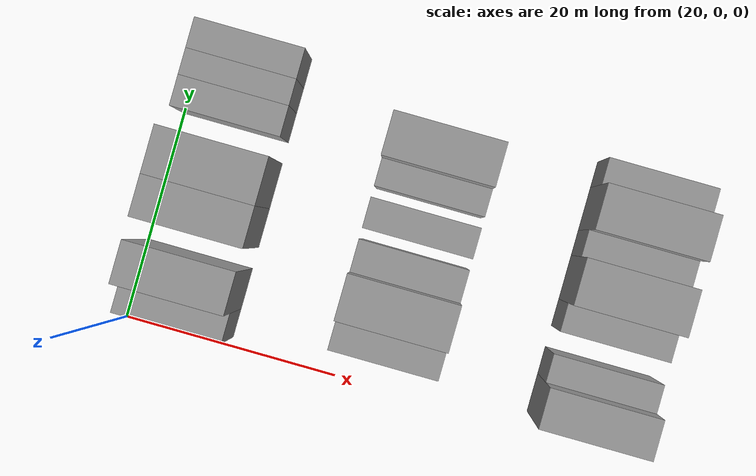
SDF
<sdf version="1.6">
 <world name="default">
  <model name="building_53">
   <static>1</static>
   <pose>25.0000 2.2171 0 0.000000 0.000000 0.000000</pose>
   <link name="link">
    <pose>0 0 3.00 0 0 0</pose>
    <collision name="collision"><geometry><box><size>10.0000 2.7331 6.0000</size></box></geometry></collision>
    <visual name="visual">
     <cast_shadows>0</cast_shadows>
     <geometry><box><size>10.0000 2.7331 6.0000</size></box></geometry>
     <material>
      <script>
       <uri>model://grey_wall/materials/scripts</uri>
       <uri>model://grey_wall/materials/textures</uri>
       <name>vrc/grey_wall</name>
      </script>
     </material>
    </visual>
   </link>
  </model>
  <model name="building_54">
   <static>1</static>
   <pose>25.0000 5.5226 0 0.000000 0.000000 0.000000</pose>
   <link name="link">
    <pose>0 0 4.50 0 0 0</pose>
    <collision name="collision"><geometry><box><size>10.0000 3.8780 9.0000</size></box></geometry></collision>
    <visual name="visual">
     <cast_shadows>0</cast_shadows>
     <geometry><box><size>10.0000 3.8780 9.0000</size></box></geometry>
     <material>
      <script>
       <uri>model://grey_wall/materials/scripts</uri>
       <uri>model://grey_wall/materials/textures</uri>
       <name>vrc/grey_wall</name>
      </script>
     </material>
    </visual>
   </link>
  </model>
  <model name="building_55">
   <static>1</static>
   <pose>25.0000 11.3339 0 0.000000 0.000000 0.000000</pose>
   <link name="link">
    <pose>0 0 4.50 0 0 0</pose>
    <collision name="collision"><geometry><box><size>10.0000 3.7448 9.0000</size></box></geometry></collision>
    <visual name="visual">
     <cast_shadows>0</cast_shadows>
     <geometry><box><size>10.0000 3.7448 9.0000</size></box></geometry>
     <material>
      <script>
       <uri>model://grey_wall/materials/scripts</uri>
       <uri>model://grey_wall/materials/textures</uri>
       <name>vrc/grey_wall</name>
      </script>
     </material>
    </visual>
   </link>
  </model>
  <model name="building_56">
   <static>1</static>
   <pose>25.0000 15.3675 0 0.000000 0.000000 0.000000</pose>
   <link name="link">
    <pose>0 0 4.50 0 0 0</pose>
    <collision name="collision"><geometry><box><size>10.0000 4.3223 9.0000</size></box></geometry></collision>
    <visual name="visual">
     <cast_shadows>0</cast_shadows>
     <geometry><box><size>10.0000 4.3223 9.0000</size></box></geometry>
     <material>
      <script>
       <uri>model://grey_wall/materials/scripts</uri>
       <uri>model://grey_wall/materials/textures</uri>
       <name>vrc/grey_wall</name>
      </script>
     </material>
    </visual>
   </link>
  </model>
  <model name="building_57">
   <static>1</static>
   <pose>25.0000 20.9321 0 0.000000 0.000000 0.000000</pose>
   <link name="link">
    <pose>0 0 3.00 0 0 0</pose>
    <collision name="collision"><geometry><box><size>10.0000 2.8068 6.0000</size></box></geometry></collision>
    <visual name="visual">
     <cast_shadows>0</cast_shadows>
     <geometry><box><size>10.0000 2.8068 6.0000</size></box></geometry>
     <material>
      <script>
       <uri>model://grey_wall/materials/scripts</uri>
       <uri>model://grey_wall/materials/textures</uri>
       <name>vrc/grey_wall</name>
      </script>
     </material>
    </visual>
   </link>
  </model>
  <model name="building_58">
   <static>1</static>
   <pose>25.0000 23.5413 0 0.000000 0.000000 0.000000</pose>
   <link name="link">
    <pose>0 0 3.00 0 0 0</pose>
    <collision name="collision"><geometry><box><size>10.0000 2.4117 6.0000</size></box></geometry></collision>
    <visual name="visual">
     <cast_shadows>0</cast_shadows>
     <geometry><box><size>10.0000 2.4117 6.0000</size></box></geometry>
     <material>
      <script>
       <uri>model://grey_wall/materials/scripts</uri>
       <uri>model://grey_wall/materials/textures</uri>
       <name>vrc/grey_wall</name>
      </script>
     </material>
    </visual>
   </link>
  </model>
  <model name="building_59">
   <static>1</static>
   <pose>25.0000 26.1394 0 0.000000 0.000000 0.000000</pose>
   <link name="link">
    <pose>0 0 3.00 0 0 0</pose>
    <collision name="collision"><geometry><box><size>10.0000 2.7844 6.0000</size></box></geometry></collision>
    <visual name="visual">
     <cast_shadows>0</cast_shadows>
     <geometry><box><size>10.0000 2.7844 6.0000</size></box></geometry>
     <material>
      <script>
       <uri>model://grey_wall/materials/scripts</uri>
       <uri>model://grey_wall/materials/textures</uri>
       <name>vrc/grey_wall</name>
      </script>
     </material>
    </visual>
   </link>
  </model>
  <model name="building_156">
   <static>1</static>
   <pose>44.0000 4.3025 0 0.000000 0.000000 0.000000</pose>
   <link name="link">
    <pose>0 0 3.00 0 0 0</pose>
    <collision name="collision"><geometry><box><size>10.0000 2.8665 6.0000</size></box></geometry></collision>
    <visual name="visual">
     <cast_shadows>0</cast_shadows>
     <geometry><box><size>10.0000 2.8665 6.0000</size></box></geometry>
     <material>
      <script>
       <uri>model://grey_wall/materials/scripts</uri>
       <uri>model://grey_wall/materials/textures</uri>
       <name>vrc/grey_wall</name>
      </script>
     </material>
    </visual>
   </link>
  </model>
  <model name="building_157">
   <static>1</static>
   <pose>44.0000 7.8190 0 0.000000 0.000000 0.000000</pose>
   <link name="link">
    <pose>0 0 4.50 0 0 0</pose>
    <collision name="collision"><geometry><box><size>10.0000 4.1665 9.0000</size></box></geometry></collision>
    <visual name="visual">
     <cast_shadows>0</cast_shadows>
     <geometry><box><size>10.0000 4.1665 9.0000</size></box></geometry>
     <material>
      <script>
       <uri>model://grey_wall/materials/scripts</uri>
       <uri>model://grey_wall/materials/textures</uri>
       <name>vrc/grey_wall</name>
      </script>
     </material>
    </visual>
   </link>
  </model>
  <model name="building_158">
   <static>1</static>
   <pose>44.0000 11.3945 0 0.000000 0.000000 0.000000</pose>
   <link name="link">
    <pose>0 0 3.00 0 0 0</pose>
    <collision name="collision"><geometry><box><size>10.0000 2.9843 6.0000</size></box></geometry></collision>
    <visual name="visual">
     <cast_shadows>0</cast_shadows>
     <geometry><box><size>10.0000 2.9843 6.0000</size></box></geometry>
     <material>
      <script>
       <uri>model://grey_wall/materials/scripts</uri>
       <uri>model://grey_wall/materials/textures</uri>
       <name>vrc/grey_wall</name>
      </script>
     </material>
    </visual>
   </link>
  </model>
  <model name="building_159">
   <static>1</static>
   <pose>44.0000 15.2870 0 0.000000 0.000000 0.000000</pose>
   <link name="link">
    <pose>0 0 3.00 0 0 0</pose>
    <collision name="collision"><geometry><box><size>10.0000 2.8008 6.0000</size></box></geometry></collision>
    <visual name="visual">
     <cast_shadows>0</cast_shadows>
     <geometry><box><size>10.0000 2.8008 6.0000</size></box></geometry>
     <material>
      <script>
       <uri>model://grey_wall/materials/scripts</uri>
       <uri>model://grey_wall/materials/textures</uri>
       <name>vrc/grey_wall</name>
      </script>
     </material>
    </visual>
   </link>
  </model>
  <model name="building_160">
   <static>1</static>
   <pose>44.0000 18.9508 0 0.000000 0.000000 0.000000</pose>
   <link name="link">
    <pose>0 0 3.00 0 0 0</pose>
    <collision name="collision"><geometry><box><size>10.0000 2.5268 6.0000</size></box></geometry></collision>
    <visual name="visual">
     <cast_shadows>0</cast_shadows>
     <geometry><box><size>10.0000 2.5268 6.0000</size></box></geometry>
     <material>
      <script>
       <uri>model://grey_wall/materials/scripts</uri>
       <uri>model://grey_wall/materials/textures</uri>
       <name>vrc/grey_wall</name>
      </script>
     </material>
    </visual>
   </link>
  </model>
  <model name="building_161">
   <static>1</static>
   <pose>44.0000 22.1885 0 0.000000 0.000000 0.000000</pose>
   <link name="link">
    <pose>0 0 4.50 0 0 0</pose>
    <collision name="collision"><geometry><box><size>10.0000 3.9486 9.0000</size></box></geometry></collision>
    <visual name="visual">
     <cast_shadows>0</cast_shadows>
     <geometry><box><size>10.0000 3.9486 9.0000</size></box></geometry>
     <material>
      <script>
       <uri>model://grey_wall/materials/scripts</uri>
       <uri>model://grey_wall/materials/textures</uri>
       <name>vrc/grey_wall</name>
      </script>
     </material>
    </visual>
   </link>
  </model>
  <model name="building_273">
   <static>1</static>
   <pose>63.0000 3.5111 0 0.000000 0.000000 0.000000</pose>
   <link name="link">
    <pose>0 0 4.50 0 0 0</pose>
    <collision name="collision"><geometry><box><size>10.0000 3.6289 9.0000</size></box></geometry></collision>
    <visual name="visual">
     <cast_shadows>0</cast_shadows>
     <geometry><box><size>10.0000 3.6289 9.0000</size></box></geometry>
     <material>
      <script>
       <uri>model://grey_wall/materials/scripts</uri>
       <uri>model://grey_wall/materials/textures</uri>
       <name>vrc/grey_wall</name>
      </script>
     </material>
    </visual>
   </link>
  </model>
  <model name="building_274">
   <static>1</static>
   <pose>63.0000 6.6230 0 0.000000 0.000000 0.000000</pose>
   <link name="link">
    <pose>0 0 3.00 0 0 0</pose>
    <collision name="collision"><geometry><box><size>10.0000 2.5950 6.0000</size></box></geometry></collision>
    <visual name="visual">
     <cast_shadows>0</cast_shadows>
     <geometry><box><size>10.0000 2.5950 6.0000</size></box></geometry>
     <material>
      <script>
       <uri>model://grey_wall/materials/scripts</uri>
       <uri>model://grey_wall/materials/textures</uri>
       <name>vrc/grey_wall</name>
      </script>
     </material>
    </visual>
   </link>
  </model>
  <model name="building_275">
   <static>1</static>
   <pose>63.0000 11.2024 0 0.000000 0.000000 0.000000</pose>
   <link name="link">
    <pose>0 0 3.00 0 0 0</pose>
    <collision name="collision"><geometry><box><size>10.0000 2.5637 6.0000</size></box></geometry></collision>
    <visual name="visual">
     <cast_shadows>0</cast_shadows>
     <geometry><box><size>10.0000 2.5637 6.0000</size></box></geometry>
     <material>
      <script>
       <uri>model://grey_wall/materials/scripts</uri>
       <uri>model://grey_wall/materials/textures</uri>
       <name>vrc/grey_wall</name>
      </script>
     </material>
    </visual>
   </link>
  </model>
  <model name="building_276">
   <static>1</static>
   <pose>63.0000 14.5805 0 0.000000 0.000000 0.000000</pose>
   <link name="link">
    <pose>0 0 4.50 0 0 0</pose>
    <collision name="collision"><geometry><box><size>10.0000 4.1926 9.0000</size></box></geometry></collision>
    <visual name="visual">
     <cast_shadows>0</cast_shadows>
     <geometry><box><size>10.0000 4.1926 9.0000</size></box></geometry>
     <material>
      <script>
       <uri>model://grey_wall/materials/scripts</uri>
       <uri>model://grey_wall/materials/textures</uri>
       <name>vrc/grey_wall</name>
      </script>
     </material>
    </visual>
   </link>
  </model>
  <model name="building_277">
   <static>1</static>
   <pose>63.0000 17.8904 0 0.000000 0.000000 0.000000</pose>
   <link name="link">
    <pose>0 0 3.00 0 0 0</pose>
    <collision name="collision"><geometry><box><size>10.0000 2.4272 6.0000</size></box></geometry></collision>
    <visual name="visual">
     <cast_shadows>0</cast_shadows>
     <geometry><box><size>10.0000 2.4272 6.0000</size></box></geometry>
     <material>
      <script>
       <uri>model://grey_wall/materials/scripts</uri>
       <uri>model://grey_wall/materials/textures</uri>
       <name>vrc/grey_wall</name>
      </script>
     </material>
    </visual>
   </link>
  </model>
  <model name="building_278">
   <static>1</static>
   <pose>63.0000 21.1476 0 0.000000 0.000000 0.000000</pose>
   <link name="link">
    <pose>0 0 4.50 0 0 0</pose>
    <collision name="collision"><geometry><box><size>10.0000 4.0873 9.0000</size></box></geometry></collision>
    <visual name="visual">
     <cast_shadows>0</cast_shadows>
     <geometry><box><size>10.0000 4.0873 9.0000</size></box></geometry>
     <material>
      <script>
       <uri>model://grey_wall/materials/scripts</uri>
       <uri>model://grey_wall/materials/textures</uri>
       <name>vrc/grey_wall</name>
      </script>
     </material>
    </visual>
   </link>
  </model>
  <model name="building_279">
   <static>1</static>
   <pose>63.0000 24.4147 0 0.000000 0.000000 0.000000</pose>
   <link name="link">
    <pose>0 0 3.00 0 0 0</pose>
    <collision name="collision"><geometry><box><size>10.0000 2.4468 6.0000</size></box></geometry></collision>
    <visual name="visual">
     <cast_shadows>0</cast_shadows>
     <geometry><box><size>10.0000 2.4468 6.0000</size></box></geometry>
     <material>
      <script>
       <uri>model://grey_wall/materials/scripts</uri>
       <uri>model://grey_wall/materials/textures</uri>
       <name>vrc/grey_wall</name>
      </script>
     </material>
    </visual>
   </link>
  </model>
 </world>
</sdf>
